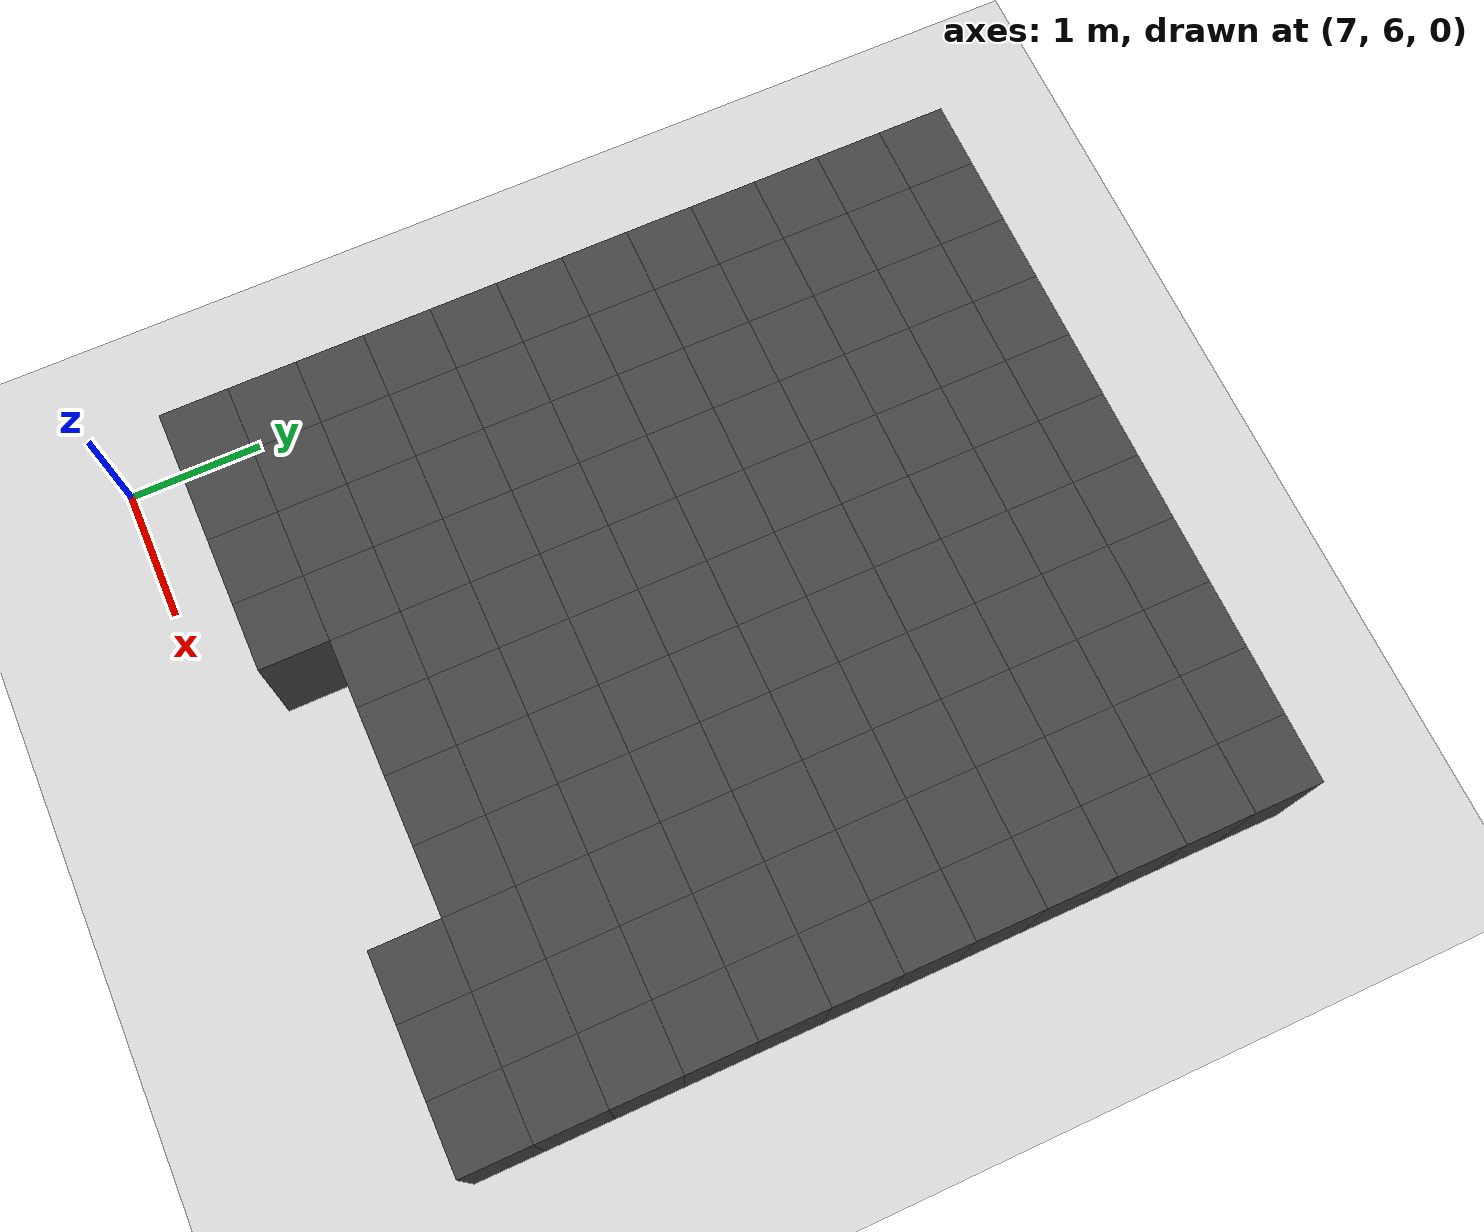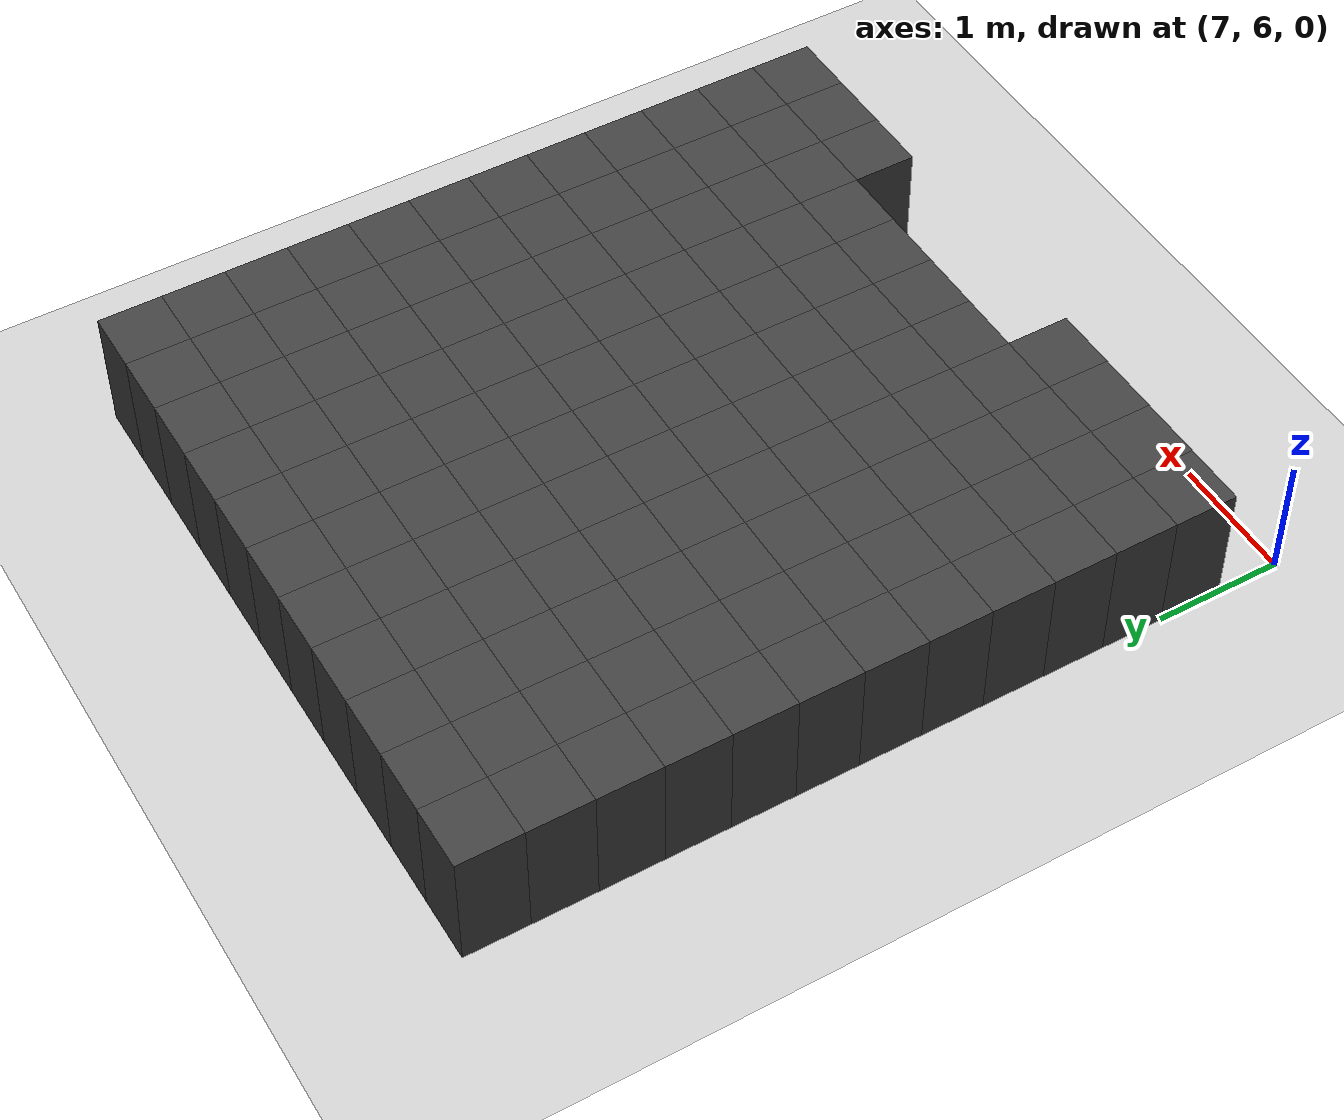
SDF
<sdf version="1.7">
 <world name="map_12356">
  <model name="ground_plane">
   <static>true</static>
   <link name="link">
    <collision name="collision">
     <geometry><plane><normal>0 0 1</normal><size>200 200</size></plane></geometry>
    </collision>
    <visual name="visual">
     <geometry><plane><normal>0 0 1</normal><size>200 200</size></plane></geometry>
     <material><ambient>0.8 0.8 0.8 1</ambient><diffuse>0.8 0.8 0.8 1</diffuse></material>
    </visual>
   </link>
  </model>
  <model name="maze_environment">
   <static>true</static>
   <link name="wall_39">
    <pose>7.250 12.250 0.500 0 0 0</pose>
    <collision name="col"><geometry><box><size>0.5 0.5 1.0</size></box></geometry></collision>
    <visual name="vis">
     <geometry><box><size>0.5 0.5 1.0</size></box></geometry>
     <material><ambient>0.15 0.15 0.15 1</ambient><diffuse>0.25 0.25 0.25 1</diffuse></material>
    </visual>
   </link>
   <link name="wall_40">
    <pose>7.750 12.250 0.500 0 0 0</pose>
    <collision name="col"><geometry><box><size>0.5 0.5 1.0</size></box></geometry></collision>
    <visual name="vis">
     <geometry><box><size>0.5 0.5 1.0</size></box></geometry>
     <material><ambient>0.15 0.15 0.15 1</ambient><diffuse>0.25 0.25 0.25 1</diffuse></material>
    </visual>
   </link>
   <link name="wall_41">
    <pose>8.250 12.250 0.500 0 0 0</pose>
    <collision name="col"><geometry><box><size>0.5 0.5 1.0</size></box></geometry></collision>
    <visual name="vis">
     <geometry><box><size>0.5 0.5 1.0</size></box></geometry>
     <material><ambient>0.15 0.15 0.15 1</ambient><diffuse>0.25 0.25 0.25 1</diffuse></material>
    </visual>
   </link>
   <link name="wall_42">
    <pose>8.750 12.250 0.500 0 0 0</pose>
    <collision name="col"><geometry><box><size>0.5 0.5 1.0</size></box></geometry></collision>
    <visual name="vis">
     <geometry><box><size>0.5 0.5 1.0</size></box></geometry>
     <material><ambient>0.15 0.15 0.15 1</ambient><diffuse>0.25 0.25 0.25 1</diffuse></material>
    </visual>
   </link>
   <link name="wall_43">
    <pose>9.250 12.250 0.500 0 0 0</pose>
    <collision name="col"><geometry><box><size>0.5 0.5 1.0</size></box></geometry></collision>
    <visual name="vis">
     <geometry><box><size>0.5 0.5 1.0</size></box></geometry>
     <material><ambient>0.15 0.15 0.15 1</ambient><diffuse>0.25 0.25 0.25 1</diffuse></material>
    </visual>
   </link>
   <link name="wall_44">
    <pose>9.750 12.250 0.500 0 0 0</pose>
    <collision name="col"><geometry><box><size>0.5 0.5 1.0</size></box></geometry></collision>
    <visual name="vis">
     <geometry><box><size>0.5 0.5 1.0</size></box></geometry>
     <material><ambient>0.15 0.15 0.15 1</ambient><diffuse>0.25 0.25 0.25 1</diffuse></material>
    </visual>
   </link>
   <link name="wall_45">
    <pose>10.250 12.250 0.500 0 0 0</pose>
    <collision name="col"><geometry><box><size>0.5 0.5 1.0</size></box></geometry></collision>
    <visual name="vis">
     <geometry><box><size>0.5 0.5 1.0</size></box></geometry>
     <material><ambient>0.15 0.15 0.15 1</ambient><diffuse>0.25 0.25 0.25 1</diffuse></material>
    </visual>
   </link>
   <link name="wall_46">
    <pose>10.750 12.250 0.500 0 0 0</pose>
    <collision name="col"><geometry><box><size>0.5 0.5 1.0</size></box></geometry></collision>
    <visual name="vis">
     <geometry><box><size>0.5 0.5 1.0</size></box></geometry>
     <material><ambient>0.15 0.15 0.15 1</ambient><diffuse>0.25 0.25 0.25 1</diffuse></material>
    </visual>
   </link>
   <link name="wall_47">
    <pose>11.250 12.250 0.500 0 0 0</pose>
    <collision name="col"><geometry><box><size>0.5 0.5 1.0</size></box></geometry></collision>
    <visual name="vis">
     <geometry><box><size>0.5 0.5 1.0</size></box></geometry>
     <material><ambient>0.15 0.15 0.15 1</ambient><diffuse>0.25 0.25 0.25 1</diffuse></material>
    </visual>
   </link>
   <link name="wall_48">
    <pose>11.750 12.250 0.500 0 0 0</pose>
    <collision name="col"><geometry><box><size>0.5 0.5 1.0</size></box></geometry></collision>
    <visual name="vis">
     <geometry><box><size>0.5 0.5 1.0</size></box></geometry>
     <material><ambient>0.15 0.15 0.15 1</ambient><diffuse>0.25 0.25 0.25 1</diffuse></material>
    </visual>
   </link>
   <link name="wall_49">
    <pose>12.250 12.250 0.500 0 0 0</pose>
    <collision name="col"><geometry><box><size>0.5 0.5 1.0</size></box></geometry></collision>
    <visual name="vis">
     <geometry><box><size>0.5 0.5 1.0</size></box></geometry>
     <material><ambient>0.15 0.15 0.15 1</ambient><diffuse>0.25 0.25 0.25 1</diffuse></material>
    </visual>
   </link>
   <link name="wall_86">
    <pose>7.250 11.750 0.500 0 0 0</pose>
    <collision name="col"><geometry><box><size>0.5 0.5 1.0</size></box></geometry></collision>
    <visual name="vis">
     <geometry><box><size>0.5 0.5 1.0</size></box></geometry>
     <material><ambient>0.15 0.15 0.15 1</ambient><diffuse>0.25 0.25 0.25 1</diffuse></material>
    </visual>
   </link>
   <link name="wall_87">
    <pose>7.750 11.750 0.500 0 0 0</pose>
    <collision name="col"><geometry><box><size>0.5 0.5 1.0</size></box></geometry></collision>
    <visual name="vis">
     <geometry><box><size>0.5 0.5 1.0</size></box></geometry>
     <material><ambient>0.15 0.15 0.15 1</ambient><diffuse>0.25 0.25 0.25 1</diffuse></material>
    </visual>
   </link>
   <link name="wall_88">
    <pose>8.250 11.750 0.500 0 0 0</pose>
    <collision name="col"><geometry><box><size>0.5 0.5 1.0</size></box></geometry></collision>
    <visual name="vis">
     <geometry><box><size>0.5 0.5 1.0</size></box></geometry>
     <material><ambient>0.15 0.15 0.15 1</ambient><diffuse>0.25 0.25 0.25 1</diffuse></material>
    </visual>
   </link>
   <link name="wall_89">
    <pose>8.750 11.750 0.500 0 0 0</pose>
    <collision name="col"><geometry><box><size>0.5 0.5 1.0</size></box></geometry></collision>
    <visual name="vis">
     <geometry><box><size>0.5 0.5 1.0</size></box></geometry>
     <material><ambient>0.15 0.15 0.15 1</ambient><diffuse>0.25 0.25 0.25 1</diffuse></material>
    </visual>
   </link>
   <link name="wall_90">
    <pose>9.250 11.750 0.500 0 0 0</pose>
    <collision name="col"><geometry><box><size>0.5 0.5 1.0</size></box></geometry></collision>
    <visual name="vis">
     <geometry><box><size>0.5 0.5 1.0</size></box></geometry>
     <material><ambient>0.15 0.15 0.15 1</ambient><diffuse>0.25 0.25 0.25 1</diffuse></material>
    </visual>
   </link>
   <link name="wall_91">
    <pose>9.750 11.750 0.500 0 0 0</pose>
    <collision name="col"><geometry><box><size>0.5 0.5 1.0</size></box></geometry></collision>
    <visual name="vis">
     <geometry><box><size>0.5 0.5 1.0</size></box></geometry>
     <material><ambient>0.15 0.15 0.15 1</ambient><diffuse>0.25 0.25 0.25 1</diffuse></material>
    </visual>
   </link>
   <link name="wall_92">
    <pose>10.250 11.750 0.500 0 0 0</pose>
    <collision name="col"><geometry><box><size>0.5 0.5 1.0</size></box></geometry></collision>
    <visual name="vis">
     <geometry><box><size>0.5 0.5 1.0</size></box></geometry>
     <material><ambient>0.15 0.15 0.15 1</ambient><diffuse>0.25 0.25 0.25 1</diffuse></material>
    </visual>
   </link>
   <link name="wall_93">
    <pose>10.750 11.750 0.500 0 0 0</pose>
    <collision name="col"><geometry><box><size>0.5 0.5 1.0</size></box></geometry></collision>
    <visual name="vis">
     <geometry><box><size>0.5 0.5 1.0</size></box></geometry>
     <material><ambient>0.15 0.15 0.15 1</ambient><diffuse>0.25 0.25 0.25 1</diffuse></material>
    </visual>
   </link>
   <link name="wall_94">
    <pose>11.250 11.750 0.500 0 0 0</pose>
    <collision name="col"><geometry><box><size>0.5 0.5 1.0</size></box></geometry></collision>
    <visual name="vis">
     <geometry><box><size>0.5 0.5 1.0</size></box></geometry>
     <material><ambient>0.15 0.15 0.15 1</ambient><diffuse>0.25 0.25 0.25 1</diffuse></material>
    </visual>
   </link>
   <link name="wall_95">
    <pose>11.750 11.750 0.500 0 0 0</pose>
    <collision name="col"><geometry><box><size>0.5 0.5 1.0</size></box></geometry></collision>
    <visual name="vis">
     <geometry><box><size>0.5 0.5 1.0</size></box></geometry>
     <material><ambient>0.15 0.15 0.15 1</ambient><diffuse>0.25 0.25 0.25 1</diffuse></material>
    </visual>
   </link>
   <link name="wall_96">
    <pose>12.250 11.750 0.500 0 0 0</pose>
    <collision name="col"><geometry><box><size>0.5 0.5 1.0</size></box></geometry></collision>
    <visual name="vis">
     <geometry><box><size>0.5 0.5 1.0</size></box></geometry>
     <material><ambient>0.15 0.15 0.15 1</ambient><diffuse>0.25 0.25 0.25 1</diffuse></material>
    </visual>
   </link>
   <link name="wall_127">
    <pose>7.250 11.250 0.500 0 0 0</pose>
    <collision name="col"><geometry><box><size>0.5 0.5 1.0</size></box></geometry></collision>
    <visual name="vis">
     <geometry><box><size>0.5 0.5 1.0</size></box></geometry>
     <material><ambient>0.15 0.15 0.15 1</ambient><diffuse>0.25 0.25 0.25 1</diffuse></material>
    </visual>
   </link>
   <link name="wall_128">
    <pose>7.750 11.250 0.500 0 0 0</pose>
    <collision name="col"><geometry><box><size>0.5 0.5 1.0</size></box></geometry></collision>
    <visual name="vis">
     <geometry><box><size>0.5 0.5 1.0</size></box></geometry>
     <material><ambient>0.15 0.15 0.15 1</ambient><diffuse>0.25 0.25 0.25 1</diffuse></material>
    </visual>
   </link>
   <link name="wall_129">
    <pose>8.250 11.250 0.500 0 0 0</pose>
    <collision name="col"><geometry><box><size>0.5 0.5 1.0</size></box></geometry></collision>
    <visual name="vis">
     <geometry><box><size>0.5 0.5 1.0</size></box></geometry>
     <material><ambient>0.15 0.15 0.15 1</ambient><diffuse>0.25 0.25 0.25 1</diffuse></material>
    </visual>
   </link>
   <link name="wall_130">
    <pose>8.750 11.250 0.500 0 0 0</pose>
    <collision name="col"><geometry><box><size>0.5 0.5 1.0</size></box></geometry></collision>
    <visual name="vis">
     <geometry><box><size>0.5 0.5 1.0</size></box></geometry>
     <material><ambient>0.15 0.15 0.15 1</ambient><diffuse>0.25 0.25 0.25 1</diffuse></material>
    </visual>
   </link>
   <link name="wall_131">
    <pose>9.250 11.250 0.500 0 0 0</pose>
    <collision name="col"><geometry><box><size>0.5 0.5 1.0</size></box></geometry></collision>
    <visual name="vis">
     <geometry><box><size>0.5 0.5 1.0</size></box></geometry>
     <material><ambient>0.15 0.15 0.15 1</ambient><diffuse>0.25 0.25 0.25 1</diffuse></material>
    </visual>
   </link>
   <link name="wall_132">
    <pose>9.750 11.250 0.500 0 0 0</pose>
    <collision name="col"><geometry><box><size>0.5 0.5 1.0</size></box></geometry></collision>
    <visual name="vis">
     <geometry><box><size>0.5 0.5 1.0</size></box></geometry>
     <material><ambient>0.15 0.15 0.15 1</ambient><diffuse>0.25 0.25 0.25 1</diffuse></material>
    </visual>
   </link>
   <link name="wall_133">
    <pose>10.250 11.250 0.500 0 0 0</pose>
    <collision name="col"><geometry><box><size>0.5 0.5 1.0</size></box></geometry></collision>
    <visual name="vis">
     <geometry><box><size>0.5 0.5 1.0</size></box></geometry>
     <material><ambient>0.15 0.15 0.15 1</ambient><diffuse>0.25 0.25 0.25 1</diffuse></material>
    </visual>
   </link>
   <link name="wall_134">
    <pose>10.750 11.250 0.500 0 0 0</pose>
    <collision name="col"><geometry><box><size>0.5 0.5 1.0</size></box></geometry></collision>
    <visual name="vis">
     <geometry><box><size>0.5 0.5 1.0</size></box></geometry>
     <material><ambient>0.15 0.15 0.15 1</ambient><diffuse>0.25 0.25 0.25 1</diffuse></material>
    </visual>
   </link>
   <link name="wall_135">
    <pose>11.250 11.250 0.500 0 0 0</pose>
    <collision name="col"><geometry><box><size>0.5 0.5 1.0</size></box></geometry></collision>
    <visual name="vis">
     <geometry><box><size>0.5 0.5 1.0</size></box></geometry>
     <material><ambient>0.15 0.15 0.15 1</ambient><diffuse>0.25 0.25 0.25 1</diffuse></material>
    </visual>
   </link>
   <link name="wall_136">
    <pose>11.750 11.250 0.500 0 0 0</pose>
    <collision name="col"><geometry><box><size>0.5 0.5 1.0</size></box></geometry></collision>
    <visual name="vis">
     <geometry><box><size>0.5 0.5 1.0</size></box></geometry>
     <material><ambient>0.15 0.15 0.15 1</ambient><diffuse>0.25 0.25 0.25 1</diffuse></material>
    </visual>
   </link>
   <link name="wall_137">
    <pose>12.250 11.250 0.500 0 0 0</pose>
    <collision name="col"><geometry><box><size>0.5 0.5 1.0</size></box></geometry></collision>
    <visual name="vis">
     <geometry><box><size>0.5 0.5 1.0</size></box></geometry>
     <material><ambient>0.15 0.15 0.15 1</ambient><diffuse>0.25 0.25 0.25 1</diffuse></material>
    </visual>
   </link>
   <link name="wall_168">
    <pose>7.250 10.750 0.500 0 0 0</pose>
    <collision name="col"><geometry><box><size>0.5 0.5 1.0</size></box></geometry></collision>
    <visual name="vis">
     <geometry><box><size>0.5 0.5 1.0</size></box></geometry>
     <material><ambient>0.15 0.15 0.15 1</ambient><diffuse>0.25 0.25 0.25 1</diffuse></material>
    </visual>
   </link>
   <link name="wall_169">
    <pose>7.750 10.750 0.500 0 0 0</pose>
    <collision name="col"><geometry><box><size>0.5 0.5 1.0</size></box></geometry></collision>
    <visual name="vis">
     <geometry><box><size>0.5 0.5 1.0</size></box></geometry>
     <material><ambient>0.15 0.15 0.15 1</ambient><diffuse>0.25 0.25 0.25 1</diffuse></material>
    </visual>
   </link>
   <link name="wall_170">
    <pose>8.250 10.750 0.500 0 0 0</pose>
    <collision name="col"><geometry><box><size>0.5 0.5 1.0</size></box></geometry></collision>
    <visual name="vis">
     <geometry><box><size>0.5 0.5 1.0</size></box></geometry>
     <material><ambient>0.15 0.15 0.15 1</ambient><diffuse>0.25 0.25 0.25 1</diffuse></material>
    </visual>
   </link>
   <link name="wall_171">
    <pose>8.750 10.750 0.500 0 0 0</pose>
    <collision name="col"><geometry><box><size>0.5 0.5 1.0</size></box></geometry></collision>
    <visual name="vis">
     <geometry><box><size>0.5 0.5 1.0</size></box></geometry>
     <material><ambient>0.15 0.15 0.15 1</ambient><diffuse>0.25 0.25 0.25 1</diffuse></material>
    </visual>
   </link>
   <link name="wall_172">
    <pose>9.250 10.750 0.500 0 0 0</pose>
    <collision name="col"><geometry><box><size>0.5 0.5 1.0</size></box></geometry></collision>
    <visual name="vis">
     <geometry><box><size>0.5 0.5 1.0</size></box></geometry>
     <material><ambient>0.15 0.15 0.15 1</ambient><diffuse>0.25 0.25 0.25 1</diffuse></material>
    </visual>
   </link>
   <link name="wall_173">
    <pose>9.750 10.750 0.500 0 0 0</pose>
    <collision name="col"><geometry><box><size>0.5 0.5 1.0</size></box></geometry></collision>
    <visual name="vis">
     <geometry><box><size>0.5 0.5 1.0</size></box></geometry>
     <material><ambient>0.15 0.15 0.15 1</ambient><diffuse>0.25 0.25 0.25 1</diffuse></material>
    </visual>
   </link>
   <link name="wall_174">
    <pose>10.250 10.750 0.500 0 0 0</pose>
    <collision name="col"><geometry><box><size>0.5 0.5 1.0</size></box></geometry></collision>
    <visual name="vis">
     <geometry><box><size>0.5 0.5 1.0</size></box></geometry>
     <material><ambient>0.15 0.15 0.15 1</ambient><diffuse>0.25 0.25 0.25 1</diffuse></material>
    </visual>
   </link>
   <link name="wall_175">
    <pose>10.750 10.750 0.500 0 0 0</pose>
    <collision name="col"><geometry><box><size>0.5 0.5 1.0</size></box></geometry></collision>
    <visual name="vis">
     <geometry><box><size>0.5 0.5 1.0</size></box></geometry>
     <material><ambient>0.15 0.15 0.15 1</ambient><diffuse>0.25 0.25 0.25 1</diffuse></material>
    </visual>
   </link>
   <link name="wall_176">
    <pose>11.250 10.750 0.500 0 0 0</pose>
    <collision name="col"><geometry><box><size>0.5 0.5 1.0</size></box></geometry></collision>
    <visual name="vis">
     <geometry><box><size>0.5 0.5 1.0</size></box></geometry>
     <material><ambient>0.15 0.15 0.15 1</ambient><diffuse>0.25 0.25 0.25 1</diffuse></material>
    </visual>
   </link>
   <link name="wall_177">
    <pose>11.750 10.750 0.500 0 0 0</pose>
    <collision name="col"><geometry><box><size>0.5 0.5 1.0</size></box></geometry></collision>
    <visual name="vis">
     <geometry><box><size>0.5 0.5 1.0</size></box></geometry>
     <material><ambient>0.15 0.15 0.15 1</ambient><diffuse>0.25 0.25 0.25 1</diffuse></material>
    </visual>
   </link>
   <link name="wall_178">
    <pose>12.250 10.750 0.500 0 0 0</pose>
    <collision name="col"><geometry><box><size>0.5 0.5 1.0</size></box></geometry></collision>
    <visual name="vis">
     <geometry><box><size>0.5 0.5 1.0</size></box></geometry>
     <material><ambient>0.15 0.15 0.15 1</ambient><diffuse>0.25 0.25 0.25 1</diffuse></material>
    </visual>
   </link>
   <link name="wall_200">
    <pose>7.250 10.250 0.500 0 0 0</pose>
    <collision name="col"><geometry><box><size>0.5 0.5 1.0</size></box></geometry></collision>
    <visual name="vis">
     <geometry><box><size>0.5 0.5 1.0</size></box></geometry>
     <material><ambient>0.15 0.15 0.15 1</ambient><diffuse>0.25 0.25 0.25 1</diffuse></material>
    </visual>
   </link>
   <link name="wall_201">
    <pose>7.750 10.250 0.500 0 0 0</pose>
    <collision name="col"><geometry><box><size>0.5 0.5 1.0</size></box></geometry></collision>
    <visual name="vis">
     <geometry><box><size>0.5 0.5 1.0</size></box></geometry>
     <material><ambient>0.15 0.15 0.15 1</ambient><diffuse>0.25 0.25 0.25 1</diffuse></material>
    </visual>
   </link>
   <link name="wall_202">
    <pose>8.250 10.250 0.500 0 0 0</pose>
    <collision name="col"><geometry><box><size>0.5 0.5 1.0</size></box></geometry></collision>
    <visual name="vis">
     <geometry><box><size>0.5 0.5 1.0</size></box></geometry>
     <material><ambient>0.15 0.15 0.15 1</ambient><diffuse>0.25 0.25 0.25 1</diffuse></material>
    </visual>
   </link>
   <link name="wall_203">
    <pose>8.750 10.250 0.500 0 0 0</pose>
    <collision name="col"><geometry><box><size>0.5 0.5 1.0</size></box></geometry></collision>
    <visual name="vis">
     <geometry><box><size>0.5 0.5 1.0</size></box></geometry>
     <material><ambient>0.15 0.15 0.15 1</ambient><diffuse>0.25 0.25 0.25 1</diffuse></material>
    </visual>
   </link>
   <link name="wall_204">
    <pose>9.250 10.250 0.500 0 0 0</pose>
    <collision name="col"><geometry><box><size>0.5 0.5 1.0</size></box></geometry></collision>
    <visual name="vis">
     <geometry><box><size>0.5 0.5 1.0</size></box></geometry>
     <material><ambient>0.15 0.15 0.15 1</ambient><diffuse>0.25 0.25 0.25 1</diffuse></material>
    </visual>
   </link>
   <link name="wall_205">
    <pose>9.750 10.250 0.500 0 0 0</pose>
    <collision name="col"><geometry><box><size>0.5 0.5 1.0</size></box></geometry></collision>
    <visual name="vis">
     <geometry><box><size>0.5 0.5 1.0</size></box></geometry>
     <material><ambient>0.15 0.15 0.15 1</ambient><diffuse>0.25 0.25 0.25 1</diffuse></material>
    </visual>
   </link>
   <link name="wall_206">
    <pose>10.250 10.250 0.500 0 0 0</pose>
    <collision name="col"><geometry><box><size>0.5 0.5 1.0</size></box></geometry></collision>
    <visual name="vis">
     <geometry><box><size>0.5 0.5 1.0</size></box></geometry>
     <material><ambient>0.15 0.15 0.15 1</ambient><diffuse>0.25 0.25 0.25 1</diffuse></material>
    </visual>
   </link>
   <link name="wall_207">
    <pose>10.750 10.250 0.500 0 0 0</pose>
    <collision name="col"><geometry><box><size>0.5 0.5 1.0</size></box></geometry></collision>
    <visual name="vis">
     <geometry><box><size>0.5 0.5 1.0</size></box></geometry>
     <material><ambient>0.15 0.15 0.15 1</ambient><diffuse>0.25 0.25 0.25 1</diffuse></material>
    </visual>
   </link>
   <link name="wall_208">
    <pose>11.250 10.250 0.500 0 0 0</pose>
    <collision name="col"><geometry><box><size>0.5 0.5 1.0</size></box></geometry></collision>
    <visual name="vis">
     <geometry><box><size>0.5 0.5 1.0</size></box></geometry>
     <material><ambient>0.15 0.15 0.15 1</ambient><diffuse>0.25 0.25 0.25 1</diffuse></material>
    </visual>
   </link>
   <link name="wall_209">
    <pose>11.750 10.250 0.500 0 0 0</pose>
    <collision name="col"><geometry><box><size>0.5 0.5 1.0</size></box></geometry></collision>
    <visual name="vis">
     <geometry><box><size>0.5 0.5 1.0</size></box></geometry>
     <material><ambient>0.15 0.15 0.15 1</ambient><diffuse>0.25 0.25 0.25 1</diffuse></material>
    </visual>
   </link>
   <link name="wall_210">
    <pose>12.250 10.250 0.500 0 0 0</pose>
    <collision name="col"><geometry><box><size>0.5 0.5 1.0</size></box></geometry></collision>
    <visual name="vis">
     <geometry><box><size>0.5 0.5 1.0</size></box></geometry>
     <material><ambient>0.15 0.15 0.15 1</ambient><diffuse>0.25 0.25 0.25 1</diffuse></material>
    </visual>
   </link>
   <link name="wall_232">
    <pose>7.250 9.750 0.500 0 0 0</pose>
    <collision name="col"><geometry><box><size>0.5 0.5 1.0</size></box></geometry></collision>
    <visual name="vis">
     <geometry><box><size>0.5 0.5 1.0</size></box></geometry>
     <material><ambient>0.15 0.15 0.15 1</ambient><diffuse>0.25 0.25 0.25 1</diffuse></material>
    </visual>
   </link>
   <link name="wall_233">
    <pose>7.750 9.750 0.500 0 0 0</pose>
    <collision name="col"><geometry><box><size>0.5 0.5 1.0</size></box></geometry></collision>
    <visual name="vis">
     <geometry><box><size>0.5 0.5 1.0</size></box></geometry>
     <material><ambient>0.15 0.15 0.15 1</ambient><diffuse>0.25 0.25 0.25 1</diffuse></material>
    </visual>
   </link>
   <link name="wall_234">
    <pose>8.250 9.750 0.500 0 0 0</pose>
    <collision name="col"><geometry><box><size>0.5 0.5 1.0</size></box></geometry></collision>
    <visual name="vis">
     <geometry><box><size>0.5 0.5 1.0</size></box></geometry>
     <material><ambient>0.15 0.15 0.15 1</ambient><diffuse>0.25 0.25 0.25 1</diffuse></material>
    </visual>
   </link>
   <link name="wall_235">
    <pose>8.750 9.750 0.500 0 0 0</pose>
    <collision name="col"><geometry><box><size>0.5 0.5 1.0</size></box></geometry></collision>
    <visual name="vis">
     <geometry><box><size>0.5 0.5 1.0</size></box></geometry>
     <material><ambient>0.15 0.15 0.15 1</ambient><diffuse>0.25 0.25 0.25 1</diffuse></material>
    </visual>
   </link>
   <link name="wall_236">
    <pose>9.250 9.750 0.500 0 0 0</pose>
    <collision name="col"><geometry><box><size>0.5 0.5 1.0</size></box></geometry></collision>
    <visual name="vis">
     <geometry><box><size>0.5 0.5 1.0</size></box></geometry>
     <material><ambient>0.15 0.15 0.15 1</ambient><diffuse>0.25 0.25 0.25 1</diffuse></material>
    </visual>
   </link>
   <link name="wall_237">
    <pose>9.750 9.750 0.500 0 0 0</pose>
    <collision name="col"><geometry><box><size>0.5 0.5 1.0</size></box></geometry></collision>
    <visual name="vis">
     <geometry><box><size>0.5 0.5 1.0</size></box></geometry>
     <material><ambient>0.15 0.15 0.15 1</ambient><diffuse>0.25 0.25 0.25 1</diffuse></material>
    </visual>
   </link>
   <link name="wall_238">
    <pose>10.250 9.750 0.500 0 0 0</pose>
    <collision name="col"><geometry><box><size>0.5 0.5 1.0</size></box></geometry></collision>
    <visual name="vis">
     <geometry><box><size>0.5 0.5 1.0</size></box></geometry>
     <material><ambient>0.15 0.15 0.15 1</ambient><diffuse>0.25 0.25 0.25 1</diffuse></material>
    </visual>
   </link>
   <link name="wall_239">
    <pose>10.750 9.750 0.500 0 0 0</pose>
    <collision name="col"><geometry><box><size>0.5 0.5 1.0</size></box></geometry></collision>
    <visual name="vis">
     <geometry><box><size>0.5 0.5 1.0</size></box></geometry>
     <material><ambient>0.15 0.15 0.15 1</ambient><diffuse>0.25 0.25 0.25 1</diffuse></material>
    </visual>
   </link>
   <link name="wall_240">
    <pose>11.250 9.750 0.500 0 0 0</pose>
    <collision name="col"><geometry><box><size>0.5 0.5 1.0</size></box></geometry></collision>
    <visual name="vis">
     <geometry><box><size>0.5 0.5 1.0</size></box></geometry>
     <material><ambient>0.15 0.15 0.15 1</ambient><diffuse>0.25 0.25 0.25 1</diffuse></material>
    </visual>
   </link>
   <link name="wall_241">
    <pose>11.750 9.750 0.500 0 0 0</pose>
    <collision name="col"><geometry><box><size>0.5 0.5 1.0</size></box></geometry></collision>
    <visual name="vis">
     <geometry><box><size>0.5 0.5 1.0</size></box></geometry>
     <material><ambient>0.15 0.15 0.15 1</ambient><diffuse>0.25 0.25 0.25 1</diffuse></material>
    </visual>
   </link>
   <link name="wall_242">
    <pose>12.250 9.750 0.500 0 0 0</pose>
    <collision name="col"><geometry><box><size>0.5 0.5 1.0</size></box></geometry></collision>
    <visual name="vis">
     <geometry><box><size>0.5 0.5 1.0</size></box></geometry>
     <material><ambient>0.15 0.15 0.15 1</ambient><diffuse>0.25 0.25 0.25 1</diffuse></material>
    </visual>
   </link>
   <link name="wall_257">
    <pose>7.250 9.250 0.500 0 0 0</pose>
    <collision name="col"><geometry><box><size>0.5 0.5 1.0</size></box></geometry></collision>
    <visual name="vis">
     <geometry><box><size>0.5 0.5 1.0</size></box></geometry>
     <material><ambient>0.15 0.15 0.15 1</ambient><diffuse>0.25 0.25 0.25 1</diffuse></material>
    </visual>
   </link>
   <link name="wall_258">
    <pose>7.750 9.250 0.500 0 0 0</pose>
    <collision name="col"><geometry><box><size>0.5 0.5 1.0</size></box></geometry></collision>
    <visual name="vis">
     <geometry><box><size>0.5 0.5 1.0</size></box></geometry>
     <material><ambient>0.15 0.15 0.15 1</ambient><diffuse>0.25 0.25 0.25 1</diffuse></material>
    </visual>
   </link>
   <link name="wall_259">
    <pose>8.250 9.250 0.500 0 0 0</pose>
    <collision name="col"><geometry><box><size>0.5 0.5 1.0</size></box></geometry></collision>
    <visual name="vis">
     <geometry><box><size>0.5 0.5 1.0</size></box></geometry>
     <material><ambient>0.15 0.15 0.15 1</ambient><diffuse>0.25 0.25 0.25 1</diffuse></material>
    </visual>
   </link>
   <link name="wall_260">
    <pose>8.750 9.250 0.500 0 0 0</pose>
    <collision name="col"><geometry><box><size>0.5 0.5 1.0</size></box></geometry></collision>
    <visual name="vis">
     <geometry><box><size>0.5 0.5 1.0</size></box></geometry>
     <material><ambient>0.15 0.15 0.15 1</ambient><diffuse>0.25 0.25 0.25 1</diffuse></material>
    </visual>
   </link>
   <link name="wall_261">
    <pose>9.250 9.250 0.500 0 0 0</pose>
    <collision name="col"><geometry><box><size>0.5 0.5 1.0</size></box></geometry></collision>
    <visual name="vis">
     <geometry><box><size>0.5 0.5 1.0</size></box></geometry>
     <material><ambient>0.15 0.15 0.15 1</ambient><diffuse>0.25 0.25 0.25 1</diffuse></material>
    </visual>
   </link>
   <link name="wall_262">
    <pose>9.750 9.250 0.500 0 0 0</pose>
    <collision name="col"><geometry><box><size>0.5 0.5 1.0</size></box></geometry></collision>
    <visual name="vis">
     <geometry><box><size>0.5 0.5 1.0</size></box></geometry>
     <material><ambient>0.15 0.15 0.15 1</ambient><diffuse>0.25 0.25 0.25 1</diffuse></material>
    </visual>
   </link>
   <link name="wall_263">
    <pose>10.250 9.250 0.500 0 0 0</pose>
    <collision name="col"><geometry><box><size>0.5 0.5 1.0</size></box></geometry></collision>
    <visual name="vis">
     <geometry><box><size>0.5 0.5 1.0</size></box></geometry>
     <material><ambient>0.15 0.15 0.15 1</ambient><diffuse>0.25 0.25 0.25 1</diffuse></material>
    </visual>
   </link>
   <link name="wall_264">
    <pose>10.750 9.250 0.500 0 0 0</pose>
    <collision name="col"><geometry><box><size>0.5 0.5 1.0</size></box></geometry></collision>
    <visual name="vis">
     <geometry><box><size>0.5 0.5 1.0</size></box></geometry>
     <material><ambient>0.15 0.15 0.15 1</ambient><diffuse>0.25 0.25 0.25 1</diffuse></material>
    </visual>
   </link>
   <link name="wall_265">
    <pose>11.250 9.250 0.500 0 0 0</pose>
    <collision name="col"><geometry><box><size>0.5 0.5 1.0</size></box></geometry></collision>
    <visual name="vis">
     <geometry><box><size>0.5 0.5 1.0</size></box></geometry>
     <material><ambient>0.15 0.15 0.15 1</ambient><diffuse>0.25 0.25 0.25 1</diffuse></material>
    </visual>
   </link>
   <link name="wall_266">
    <pose>11.750 9.250 0.500 0 0 0</pose>
    <collision name="col"><geometry><box><size>0.5 0.5 1.0</size></box></geometry></collision>
    <visual name="vis">
     <geometry><box><size>0.5 0.5 1.0</size></box></geometry>
     <material><ambient>0.15 0.15 0.15 1</ambient><diffuse>0.25 0.25 0.25 1</diffuse></material>
    </visual>
   </link>
   <link name="wall_267">
    <pose>12.250 9.250 0.500 0 0 0</pose>
    <collision name="col"><geometry><box><size>0.5 0.5 1.0</size></box></geometry></collision>
    <visual name="vis">
     <geometry><box><size>0.5 0.5 1.0</size></box></geometry>
     <material><ambient>0.15 0.15 0.15 1</ambient><diffuse>0.25 0.25 0.25 1</diffuse></material>
    </visual>
   </link>
   <link name="wall_281">
    <pose>7.250 8.750 0.500 0 0 0</pose>
    <collision name="col"><geometry><box><size>0.5 0.5 1.0</size></box></geometry></collision>
    <visual name="vis">
     <geometry><box><size>0.5 0.5 1.0</size></box></geometry>
     <material><ambient>0.15 0.15 0.15 1</ambient><diffuse>0.25 0.25 0.25 1</diffuse></material>
    </visual>
   </link>
   <link name="wall_282">
    <pose>7.750 8.750 0.500 0 0 0</pose>
    <collision name="col"><geometry><box><size>0.5 0.5 1.0</size></box></geometry></collision>
    <visual name="vis">
     <geometry><box><size>0.5 0.5 1.0</size></box></geometry>
     <material><ambient>0.15 0.15 0.15 1</ambient><diffuse>0.25 0.25 0.25 1</diffuse></material>
    </visual>
   </link>
   <link name="wall_283">
    <pose>8.250 8.750 0.500 0 0 0</pose>
    <collision name="col"><geometry><box><size>0.5 0.5 1.0</size></box></geometry></collision>
    <visual name="vis">
     <geometry><box><size>0.5 0.5 1.0</size></box></geometry>
     <material><ambient>0.15 0.15 0.15 1</ambient><diffuse>0.25 0.25 0.25 1</diffuse></material>
    </visual>
   </link>
   <link name="wall_284">
    <pose>8.750 8.750 0.500 0 0 0</pose>
    <collision name="col"><geometry><box><size>0.5 0.5 1.0</size></box></geometry></collision>
    <visual name="vis">
     <geometry><box><size>0.5 0.5 1.0</size></box></geometry>
     <material><ambient>0.15 0.15 0.15 1</ambient><diffuse>0.25 0.25 0.25 1</diffuse></material>
    </visual>
   </link>
   <link name="wall_285">
    <pose>9.250 8.750 0.500 0 0 0</pose>
    <collision name="col"><geometry><box><size>0.5 0.5 1.0</size></box></geometry></collision>
    <visual name="vis">
     <geometry><box><size>0.5 0.5 1.0</size></box></geometry>
     <material><ambient>0.15 0.15 0.15 1</ambient><diffuse>0.25 0.25 0.25 1</diffuse></material>
    </visual>
   </link>
   <link name="wall_286">
    <pose>9.750 8.750 0.500 0 0 0</pose>
    <collision name="col"><geometry><box><size>0.5 0.5 1.0</size></box></geometry></collision>
    <visual name="vis">
     <geometry><box><size>0.5 0.5 1.0</size></box></geometry>
     <material><ambient>0.15 0.15 0.15 1</ambient><diffuse>0.25 0.25 0.25 1</diffuse></material>
    </visual>
   </link>
   <link name="wall_287">
    <pose>10.250 8.750 0.500 0 0 0</pose>
    <collision name="col"><geometry><box><size>0.5 0.5 1.0</size></box></geometry></collision>
    <visual name="vis">
     <geometry><box><size>0.5 0.5 1.0</size></box></geometry>
     <material><ambient>0.15 0.15 0.15 1</ambient><diffuse>0.25 0.25 0.25 1</diffuse></material>
    </visual>
   </link>
   <link name="wall_288">
    <pose>10.750 8.750 0.500 0 0 0</pose>
    <collision name="col"><geometry><box><size>0.5 0.5 1.0</size></box></geometry></collision>
    <visual name="vis">
     <geometry><box><size>0.5 0.5 1.0</size></box></geometry>
     <material><ambient>0.15 0.15 0.15 1</ambient><diffuse>0.25 0.25 0.25 1</diffuse></material>
    </visual>
   </link>
   <link name="wall_289">
    <pose>11.250 8.750 0.500 0 0 0</pose>
    <collision name="col"><geometry><box><size>0.5 0.5 1.0</size></box></geometry></collision>
    <visual name="vis">
     <geometry><box><size>0.5 0.5 1.0</size></box></geometry>
     <material><ambient>0.15 0.15 0.15 1</ambient><diffuse>0.25 0.25 0.25 1</diffuse></material>
    </visual>
   </link>
   <link name="wall_290">
    <pose>11.750 8.750 0.500 0 0 0</pose>
    <collision name="col"><geometry><box><size>0.5 0.5 1.0</size></box></geometry></collision>
    <visual name="vis">
     <geometry><box><size>0.5 0.5 1.0</size></box></geometry>
     <material><ambient>0.15 0.15 0.15 1</ambient><diffuse>0.25 0.25 0.25 1</diffuse></material>
    </visual>
   </link>
   <link name="wall_291">
    <pose>12.250 8.750 0.500 0 0 0</pose>
    <collision name="col"><geometry><box><size>0.5 0.5 1.0</size></box></geometry></collision>
    <visual name="vis">
     <geometry><box><size>0.5 0.5 1.0</size></box></geometry>
     <material><ambient>0.15 0.15 0.15 1</ambient><diffuse>0.25 0.25 0.25 1</diffuse></material>
    </visual>
   </link>
   <link name="wall_306">
    <pose>7.250 8.250 0.500 0 0 0</pose>
    <collision name="col"><geometry><box><size>0.5 0.5 1.0</size></box></geometry></collision>
    <visual name="vis">
     <geometry><box><size>0.5 0.5 1.0</size></box></geometry>
     <material><ambient>0.15 0.15 0.15 1</ambient><diffuse>0.25 0.25 0.25 1</diffuse></material>
    </visual>
   </link>
   <link name="wall_307">
    <pose>7.750 8.250 0.500 0 0 0</pose>
    <collision name="col"><geometry><box><size>0.5 0.5 1.0</size></box></geometry></collision>
    <visual name="vis">
     <geometry><box><size>0.5 0.5 1.0</size></box></geometry>
     <material><ambient>0.15 0.15 0.15 1</ambient><diffuse>0.25 0.25 0.25 1</diffuse></material>
    </visual>
   </link>
   <link name="wall_308">
    <pose>8.250 8.250 0.500 0 0 0</pose>
    <collision name="col"><geometry><box><size>0.5 0.5 1.0</size></box></geometry></collision>
    <visual name="vis">
     <geometry><box><size>0.5 0.5 1.0</size></box></geometry>
     <material><ambient>0.15 0.15 0.15 1</ambient><diffuse>0.25 0.25 0.25 1</diffuse></material>
    </visual>
   </link>
   <link name="wall_309">
    <pose>8.750 8.250 0.500 0 0 0</pose>
    <collision name="col"><geometry><box><size>0.5 0.5 1.0</size></box></geometry></collision>
    <visual name="vis">
     <geometry><box><size>0.5 0.5 1.0</size></box></geometry>
     <material><ambient>0.15 0.15 0.15 1</ambient><diffuse>0.25 0.25 0.25 1</diffuse></material>
    </visual>
   </link>
   <link name="wall_310">
    <pose>9.250 8.250 0.500 0 0 0</pose>
    <collision name="col"><geometry><box><size>0.5 0.5 1.0</size></box></geometry></collision>
    <visual name="vis">
     <geometry><box><size>0.5 0.5 1.0</size></box></geometry>
     <material><ambient>0.15 0.15 0.15 1</ambient><diffuse>0.25 0.25 0.25 1</diffuse></material>
    </visual>
   </link>
   <link name="wall_311">
    <pose>9.750 8.250 0.500 0 0 0</pose>
    <collision name="col"><geometry><box><size>0.5 0.5 1.0</size></box></geometry></collision>
    <visual name="vis">
     <geometry><box><size>0.5 0.5 1.0</size></box></geometry>
     <material><ambient>0.15 0.15 0.15 1</ambient><diffuse>0.25 0.25 0.25 1</diffuse></material>
    </visual>
   </link>
   <link name="wall_312">
    <pose>10.250 8.250 0.500 0 0 0</pose>
    <collision name="col"><geometry><box><size>0.5 0.5 1.0</size></box></geometry></collision>
    <visual name="vis">
     <geometry><box><size>0.5 0.5 1.0</size></box></geometry>
     <material><ambient>0.15 0.15 0.15 1</ambient><diffuse>0.25 0.25 0.25 1</diffuse></material>
    </visual>
   </link>
   <link name="wall_313">
    <pose>10.750 8.250 0.500 0 0 0</pose>
    <collision name="col"><geometry><box><size>0.5 0.5 1.0</size></box></geometry></collision>
    <visual name="vis">
     <geometry><box><size>0.5 0.5 1.0</size></box></geometry>
     <material><ambient>0.15 0.15 0.15 1</ambient><diffuse>0.25 0.25 0.25 1</diffuse></material>
    </visual>
   </link>
   <link name="wall_314">
    <pose>11.250 8.250 0.500 0 0 0</pose>
    <collision name="col"><geometry><box><size>0.5 0.5 1.0</size></box></geometry></collision>
    <visual name="vis">
     <geometry><box><size>0.5 0.5 1.0</size></box></geometry>
     <material><ambient>0.15 0.15 0.15 1</ambient><diffuse>0.25 0.25 0.25 1</diffuse></material>
    </visual>
   </link>
   <link name="wall_315">
    <pose>11.750 8.250 0.500 0 0 0</pose>
    <collision name="col"><geometry><box><size>0.5 0.5 1.0</size></box></geometry></collision>
    <visual name="vis">
     <geometry><box><size>0.5 0.5 1.0</size></box></geometry>
     <material><ambient>0.15 0.15 0.15 1</ambient><diffuse>0.25 0.25 0.25 1</diffuse></material>
    </visual>
   </link>
   <link name="wall_316">
    <pose>12.250 8.250 0.500 0 0 0</pose>
    <collision name="col"><geometry><box><size>0.5 0.5 1.0</size></box></geometry></collision>
    <visual name="vis">
     <geometry><box><size>0.5 0.5 1.0</size></box></geometry>
     <material><ambient>0.15 0.15 0.15 1</ambient><diffuse>0.25 0.25 0.25 1</diffuse></material>
    </visual>
   </link>
   <link name="wall_335">
    <pose>7.250 7.750 0.500 0 0 0</pose>
    <collision name="col"><geometry><box><size>0.5 0.5 1.0</size></box></geometry></collision>
    <visual name="vis">
     <geometry><box><size>0.5 0.5 1.0</size></box></geometry>
     <material><ambient>0.15 0.15 0.15 1</ambient><diffuse>0.25 0.25 0.25 1</diffuse></material>
    </visual>
   </link>
   <link name="wall_336">
    <pose>7.750 7.750 0.500 0 0 0</pose>
    <collision name="col"><geometry><box><size>0.5 0.5 1.0</size></box></geometry></collision>
    <visual name="vis">
     <geometry><box><size>0.5 0.5 1.0</size></box></geometry>
     <material><ambient>0.15 0.15 0.15 1</ambient><diffuse>0.25 0.25 0.25 1</diffuse></material>
    </visual>
   </link>
   <link name="wall_337">
    <pose>8.250 7.750 0.500 0 0 0</pose>
    <collision name="col"><geometry><box><size>0.5 0.5 1.0</size></box></geometry></collision>
    <visual name="vis">
     <geometry><box><size>0.5 0.5 1.0</size></box></geometry>
     <material><ambient>0.15 0.15 0.15 1</ambient><diffuse>0.25 0.25 0.25 1</diffuse></material>
    </visual>
   </link>
   <link name="wall_338">
    <pose>8.750 7.750 0.500 0 0 0</pose>
    <collision name="col"><geometry><box><size>0.5 0.5 1.0</size></box></geometry></collision>
    <visual name="vis">
     <geometry><box><size>0.5 0.5 1.0</size></box></geometry>
     <material><ambient>0.15 0.15 0.15 1</ambient><diffuse>0.25 0.25 0.25 1</diffuse></material>
    </visual>
   </link>
   <link name="wall_339">
    <pose>9.250 7.750 0.500 0 0 0</pose>
    <collision name="col"><geometry><box><size>0.5 0.5 1.0</size></box></geometry></collision>
    <visual name="vis">
     <geometry><box><size>0.5 0.5 1.0</size></box></geometry>
     <material><ambient>0.15 0.15 0.15 1</ambient><diffuse>0.25 0.25 0.25 1</diffuse></material>
    </visual>
   </link>
   <link name="wall_340">
    <pose>9.750 7.750 0.500 0 0 0</pose>
    <collision name="col"><geometry><box><size>0.5 0.5 1.0</size></box></geometry></collision>
    <visual name="vis">
     <geometry><box><size>0.5 0.5 1.0</size></box></geometry>
     <material><ambient>0.15 0.15 0.15 1</ambient><diffuse>0.25 0.25 0.25 1</diffuse></material>
    </visual>
   </link>
   <link name="wall_341">
    <pose>10.250 7.750 0.500 0 0 0</pose>
    <collision name="col"><geometry><box><size>0.5 0.5 1.0</size></box></geometry></collision>
    <visual name="vis">
     <geometry><box><size>0.5 0.5 1.0</size></box></geometry>
     <material><ambient>0.15 0.15 0.15 1</ambient><diffuse>0.25 0.25 0.25 1</diffuse></material>
    </visual>
   </link>
   <link name="wall_342">
    <pose>10.750 7.750 0.500 0 0 0</pose>
    <collision name="col"><geometry><box><size>0.5 0.5 1.0</size></box></geometry></collision>
    <visual name="vis">
     <geometry><box><size>0.5 0.5 1.0</size></box></geometry>
     <material><ambient>0.15 0.15 0.15 1</ambient><diffuse>0.25 0.25 0.25 1</diffuse></material>
    </visual>
   </link>
   <link name="wall_343">
    <pose>11.250 7.750 0.500 0 0 0</pose>
    <collision name="col"><geometry><box><size>0.5 0.5 1.0</size></box></geometry></collision>
    <visual name="vis">
     <geometry><box><size>0.5 0.5 1.0</size></box></geometry>
     <material><ambient>0.15 0.15 0.15 1</ambient><diffuse>0.25 0.25 0.25 1</diffuse></material>
    </visual>
   </link>
   <link name="wall_344">
    <pose>11.750 7.750 0.500 0 0 0</pose>
    <collision name="col"><geometry><box><size>0.5 0.5 1.0</size></box></geometry></collision>
    <visual name="vis">
     <geometry><box><size>0.5 0.5 1.0</size></box></geometry>
     <material><ambient>0.15 0.15 0.15 1</ambient><diffuse>0.25 0.25 0.25 1</diffuse></material>
    </visual>
   </link>
   <link name="wall_345">
    <pose>12.250 7.750 0.500 0 0 0</pose>
    <collision name="col"><geometry><box><size>0.5 0.5 1.0</size></box></geometry></collision>
    <visual name="vis">
     <geometry><box><size>0.5 0.5 1.0</size></box></geometry>
     <material><ambient>0.15 0.15 0.15 1</ambient><diffuse>0.25 0.25 0.25 1</diffuse></material>
    </visual>
   </link>
   <link name="wall_371">
    <pose>7.250 7.250 0.500 0 0 0</pose>
    <collision name="col"><geometry><box><size>0.5 0.5 1.0</size></box></geometry></collision>
    <visual name="vis">
     <geometry><box><size>0.5 0.5 1.0</size></box></geometry>
     <material><ambient>0.15 0.15 0.15 1</ambient><diffuse>0.25 0.25 0.25 1</diffuse></material>
    </visual>
   </link>
   <link name="wall_372">
    <pose>7.750 7.250 0.500 0 0 0</pose>
    <collision name="col"><geometry><box><size>0.5 0.5 1.0</size></box></geometry></collision>
    <visual name="vis">
     <geometry><box><size>0.5 0.5 1.0</size></box></geometry>
     <material><ambient>0.15 0.15 0.15 1</ambient><diffuse>0.25 0.25 0.25 1</diffuse></material>
    </visual>
   </link>
   <link name="wall_373">
    <pose>8.250 7.250 0.500 0 0 0</pose>
    <collision name="col"><geometry><box><size>0.5 0.5 1.0</size></box></geometry></collision>
    <visual name="vis">
     <geometry><box><size>0.5 0.5 1.0</size></box></geometry>
     <material><ambient>0.15 0.15 0.15 1</ambient><diffuse>0.25 0.25 0.25 1</diffuse></material>
    </visual>
   </link>
   <link name="wall_374">
    <pose>8.750 7.250 0.500 0 0 0</pose>
    <collision name="col"><geometry><box><size>0.5 0.5 1.0</size></box></geometry></collision>
    <visual name="vis">
     <geometry><box><size>0.5 0.5 1.0</size></box></geometry>
     <material><ambient>0.15 0.15 0.15 1</ambient><diffuse>0.25 0.25 0.25 1</diffuse></material>
    </visual>
   </link>
   <link name="wall_375">
    <pose>9.250 7.250 0.500 0 0 0</pose>
    <collision name="col"><geometry><box><size>0.5 0.5 1.0</size></box></geometry></collision>
    <visual name="vis">
     <geometry><box><size>0.5 0.5 1.0</size></box></geometry>
     <material><ambient>0.15 0.15 0.15 1</ambient><diffuse>0.25 0.25 0.25 1</diffuse></material>
    </visual>
   </link>
   <link name="wall_376">
    <pose>9.750 7.250 0.500 0 0 0</pose>
    <collision name="col"><geometry><box><size>0.5 0.5 1.0</size></box></geometry></collision>
    <visual name="vis">
     <geometry><box><size>0.5 0.5 1.0</size></box></geometry>
     <material><ambient>0.15 0.15 0.15 1</ambient><diffuse>0.25 0.25 0.25 1</diffuse></material>
    </visual>
   </link>
   <link name="wall_377">
    <pose>10.250 7.250 0.500 0 0 0</pose>
    <collision name="col"><geometry><box><size>0.5 0.5 1.0</size></box></geometry></collision>
    <visual name="vis">
     <geometry><box><size>0.5 0.5 1.0</size></box></geometry>
     <material><ambient>0.15 0.15 0.15 1</ambient><diffuse>0.25 0.25 0.25 1</diffuse></material>
    </visual>
   </link>
   <link name="wall_378">
    <pose>10.750 7.250 0.500 0 0 0</pose>
    <collision name="col"><geometry><box><size>0.5 0.5 1.0</size></box></geometry></collision>
    <visual name="vis">
     <geometry><box><size>0.5 0.5 1.0</size></box></geometry>
     <material><ambient>0.15 0.15 0.15 1</ambient><diffuse>0.25 0.25 0.25 1</diffuse></material>
    </visual>
   </link>
   <link name="wall_379">
    <pose>11.250 7.250 0.500 0 0 0</pose>
    <collision name="col"><geometry><box><size>0.5 0.5 1.0</size></box></geometry></collision>
    <visual name="vis">
     <geometry><box><size>0.5 0.5 1.0</size></box></geometry>
     <material><ambient>0.15 0.15 0.15 1</ambient><diffuse>0.25 0.25 0.25 1</diffuse></material>
    </visual>
   </link>
   <link name="wall_380">
    <pose>11.750 7.250 0.500 0 0 0</pose>
    <collision name="col"><geometry><box><size>0.5 0.5 1.0</size></box></geometry></collision>
    <visual name="vis">
     <geometry><box><size>0.5 0.5 1.0</size></box></geometry>
     <material><ambient>0.15 0.15 0.15 1</ambient><diffuse>0.25 0.25 0.25 1</diffuse></material>
    </visual>
   </link>
   <link name="wall_381">
    <pose>12.250 7.250 0.500 0 0 0</pose>
    <collision name="col"><geometry><box><size>0.5 0.5 1.0</size></box></geometry></collision>
    <visual name="vis">
     <geometry><box><size>0.5 0.5 1.0</size></box></geometry>
     <material><ambient>0.15 0.15 0.15 1</ambient><diffuse>0.25 0.25 0.25 1</diffuse></material>
    </visual>
   </link>
   <link name="wall_419">
    <pose>7.250 6.750 0.500 0 0 0</pose>
    <collision name="col"><geometry><box><size>0.5 0.5 1.0</size></box></geometry></collision>
    <visual name="vis">
     <geometry><box><size>0.5 0.5 1.0</size></box></geometry>
     <material><ambient>0.15 0.15 0.15 1</ambient><diffuse>0.25 0.25 0.25 1</diffuse></material>
    </visual>
   </link>
   <link name="wall_420">
    <pose>7.750 6.750 0.500 0 0 0</pose>
    <collision name="col"><geometry><box><size>0.5 0.5 1.0</size></box></geometry></collision>
    <visual name="vis">
     <geometry><box><size>0.5 0.5 1.0</size></box></geometry>
     <material><ambient>0.15 0.15 0.15 1</ambient><diffuse>0.25 0.25 0.25 1</diffuse></material>
    </visual>
   </link>
   <link name="wall_421">
    <pose>8.250 6.750 0.500 0 0 0</pose>
    <collision name="col"><geometry><box><size>0.5 0.5 1.0</size></box></geometry></collision>
    <visual name="vis">
     <geometry><box><size>0.5 0.5 1.0</size></box></geometry>
     <material><ambient>0.15 0.15 0.15 1</ambient><diffuse>0.25 0.25 0.25 1</diffuse></material>
    </visual>
   </link>
   <link name="wall_422">
    <pose>8.750 6.750 0.500 0 0 0</pose>
    <collision name="col"><geometry><box><size>0.5 0.5 1.0</size></box></geometry></collision>
    <visual name="vis">
     <geometry><box><size>0.5 0.5 1.0</size></box></geometry>
     <material><ambient>0.15 0.15 0.15 1</ambient><diffuse>0.25 0.25 0.25 1</diffuse></material>
    </visual>
   </link>
   <link name="wall_423">
    <pose>11.250 6.750 0.500 0 0 0</pose>
    <collision name="col"><geometry><box><size>0.5 0.5 1.0</size></box></geometry></collision>
    <visual name="vis">
     <geometry><box><size>0.5 0.5 1.0</size></box></geometry>
     <material><ambient>0.15 0.15 0.15 1</ambient><diffuse>0.25 0.25 0.25 1</diffuse></material>
    </visual>
   </link>
   <link name="wall_424">
    <pose>11.750 6.750 0.500 0 0 0</pose>
    <collision name="col"><geometry><box><size>0.5 0.5 1.0</size></box></geometry></collision>
    <visual name="vis">
     <geometry><box><size>0.5 0.5 1.0</size></box></geometry>
     <material><ambient>0.15 0.15 0.15 1</ambient><diffuse>0.25 0.25 0.25 1</diffuse></material>
    </visual>
   </link>
   <link name="wall_425">
    <pose>12.250 6.750 0.500 0 0 0</pose>
    <collision name="col"><geometry><box><size>0.5 0.5 1.0</size></box></geometry></collision>
    <visual name="vis">
     <geometry><box><size>0.5 0.5 1.0</size></box></geometry>
     <material><ambient>0.15 0.15 0.15 1</ambient><diffuse>0.25 0.25 0.25 1</diffuse></material>
    </visual>
   </link>
  </model>
 </world>
</sdf>
